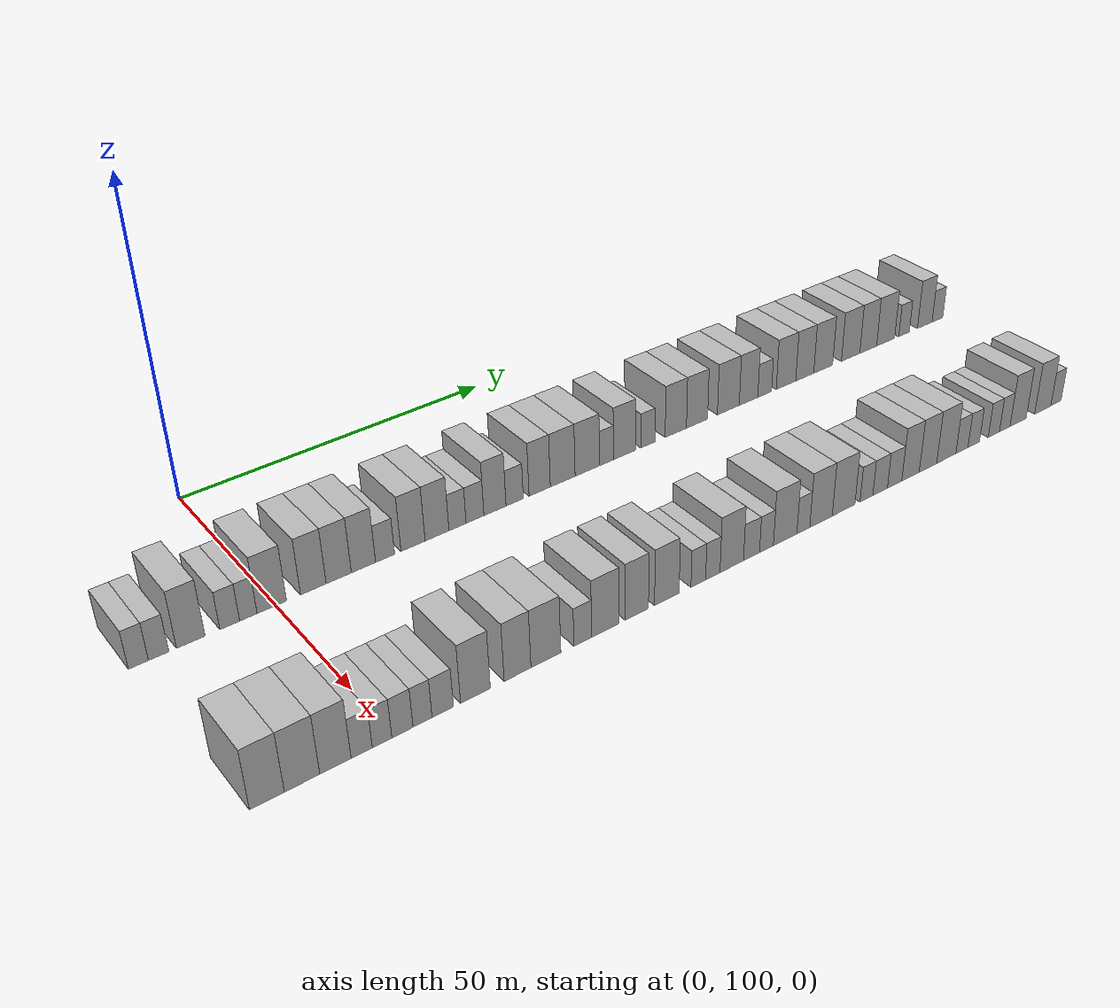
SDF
<sdf version="1.6">
 <world name="default">
  <model name="building_129">
   <static>1</static>
   <pose>25.0000 81.5462 0 0.000000 0.000000 0.000000</pose>
   <link name="link">
    <pose>0 0 3.00 0 0 0</pose>
    <collision name="collision"><geometry><box><size>10.0000 2.5734 6.0000</size></box></geometry></collision>
    <visual name="visual">
     <cast_shadows>0</cast_shadows>
     <geometry><box><size>10.0000 2.5734 6.0000</size></box></geometry>
     <material>
      <script>
       <uri>model://HANNAS_wall/materials/scripts</uri>
       <uri>model://HANNAS_wall/materials/textures</uri>
       <name>vrc/HANNAS_wall</name>
      </script>
     </material>
    </visual>
   </link>
  </model>
  <model name="building_130">
   <static>1</static>
   <pose>25.0000 84.1555 0 0.000000 0.000000 0.000000</pose>
   <link name="link">
    <pose>0 0 3.00 0 0 0</pose>
    <collision name="collision"><geometry><box><size>10.0000 2.6452 6.0000</size></box></geometry></collision>
    <visual name="visual">
     <cast_shadows>0</cast_shadows>
     <geometry><box><size>10.0000 2.6452 6.0000</size></box></geometry>
     <material>
      <script>
       <uri>model://HANNAS_wall/materials/scripts</uri>
       <uri>model://HANNAS_wall/materials/textures</uri>
       <name>vrc/HANNAS_wall</name>
      </script>
     </material>
    </visual>
   </link>
  </model>
  <model name="building_131">
   <static>1</static>
   <pose>25.0000 88.3767 0 0.000000 0.000000 0.000000</pose>
   <link name="link">
    <pose>0 0 4.50 0 0 0</pose>
    <collision name="collision"><geometry><box><size>10.0000 3.7973 9.0000</size></box></geometry></collision>
    <visual name="visual">
     <cast_shadows>0</cast_shadows>
     <geometry><box><size>10.0000 3.7973 9.0000</size></box></geometry>
     <material>
      <script>
       <uri>model://HANNAS_wall/materials/scripts</uri>
       <uri>model://HANNAS_wall/materials/textures</uri>
       <name>vrc/HANNAS_wall</name>
      </script>
     </material>
    </visual>
   </link>
  </model>
  <model name="building_132">
   <static>1</static>
   <pose>25.0000 93.6257 0 0.000000 0.000000 0.000000</pose>
   <link name="link">
    <pose>0 0 3.00 0 0 0</pose>
    <collision name="collision"><geometry><box><size>10.0000 2.7006 6.0000</size></box></geometry></collision>
    <visual name="visual">
     <cast_shadows>0</cast_shadows>
     <geometry><box><size>10.0000 2.7006 6.0000</size></box></geometry>
     <material>
      <script>
       <uri>model://HANNAS_wall/materials/scripts</uri>
       <uri>model://HANNAS_wall/materials/textures</uri>
       <name>vrc/HANNAS_wall</name>
      </script>
     </material>
    </visual>
   </link>
  </model>
  <model name="building_133">
   <static>1</static>
   <pose>25.0000 96.1832 0 0.000000 0.000000 0.000000</pose>
   <link name="link">
    <pose>0 0 3.00 0 0 0</pose>
    <collision name="collision"><geometry><box><size>10.0000 2.4144 6.0000</size></box></geometry></collision>
    <visual name="visual">
     <cast_shadows>0</cast_shadows>
     <geometry><box><size>10.0000 2.4144 6.0000</size></box></geometry>
     <material>
      <script>
       <uri>model://HANNAS_wall/materials/scripts</uri>
       <uri>model://HANNAS_wall/materials/textures</uri>
       <name>vrc/HANNAS_wall</name>
      </script>
     </material>
    </visual>
   </link>
  </model>
  <model name="building_134">
   <static>1</static>
   <pose>25.0000 99.4696 0 0.000000 0.000000 0.000000</pose>
   <link name="link">
    <pose>0 0 4.50 0 0 0</pose>
    <collision name="collision"><geometry><box><size>10.0000 4.1584 9.0000</size></box></geometry></collision>
    <visual name="visual">
     <cast_shadows>0</cast_shadows>
     <geometry><box><size>10.0000 4.1584 9.0000</size></box></geometry>
     <material>
      <script>
       <uri>model://HANNAS_wall/materials/scripts</uri>
       <uri>model://HANNAS_wall/materials/textures</uri>
       <name>vrc/HANNAS_wall</name>
      </script>
     </material>
    </visual>
   </link>
  </model>
  <model name="building_135">
   <static>1</static>
   <pose>25.0000 105.4151 0 0.000000 0.000000 0.000000</pose>
   <link name="link">
    <pose>0 0 4.50 0 0 0</pose>
    <collision name="collision"><geometry><box><size>10.0000 3.7325 9.0000</size></box></geometry></collision>
    <visual name="visual">
     <cast_shadows>0</cast_shadows>
     <geometry><box><size>10.0000 3.7325 9.0000</size></box></geometry>
     <material>
      <script>
       <uri>model://HANNAS_wall/materials/scripts</uri>
       <uri>model://HANNAS_wall/materials/textures</uri>
       <name>vrc/HANNAS_wall</name>
      </script>
     </material>
    </visual>
   </link>
  </model>
  <model name="building_136">
   <static>1</static>
   <pose>25.0000 109.1566 0 0.000000 0.000000 0.000000</pose>
   <link name="link">
    <pose>0 0 4.50 0 0 0</pose>
    <collision name="collision"><geometry><box><size>10.0000 3.7506 9.0000</size></box></geometry></collision>
    <visual name="visual">
     <cast_shadows>0</cast_shadows>
     <geometry><box><size>10.0000 3.7506 9.0000</size></box></geometry>
     <material>
      <script>
       <uri>model://HANNAS_wall/materials/scripts</uri>
       <uri>model://HANNAS_wall/materials/textures</uri>
       <name>vrc/HANNAS_wall</name>
      </script>
     </material>
    </visual>
   </link>
  </model>
  <model name="building_137">
   <static>1</static>
   <pose>25.0000 112.8638 0 0.000000 0.000000 0.000000</pose>
   <link name="link">
    <pose>0 0 4.50 0 0 0</pose>
    <collision name="collision"><geometry><box><size>10.0000 3.6638 9.0000</size></box></geometry></collision>
    <visual name="visual">
     <cast_shadows>0</cast_shadows>
     <geometry><box><size>10.0000 3.6638 9.0000</size></box></geometry>
     <material>
      <script>
       <uri>model://HANNAS_wall/materials/scripts</uri>
       <uri>model://HANNAS_wall/materials/textures</uri>
       <name>vrc/HANNAS_wall</name>
      </script>
     </material>
    </visual>
   </link>
  </model>
  <model name="building_138">
   <static>1</static>
   <pose>25.0000 116.1544 0 0.000000 0.000000 0.000000</pose>
   <link name="link">
    <pose>0 0 3.00 0 0 0</pose>
    <collision name="collision"><geometry><box><size>10.0000 2.9174 6.0000</size></box></geometry></collision>
    <visual name="visual">
     <cast_shadows>0</cast_shadows>
     <geometry><box><size>10.0000 2.9174 6.0000</size></box></geometry>
     <material>
      <script>
       <uri>model://HANNAS_wall/materials/scripts</uri>
       <uri>model://HANNAS_wall/materials/textures</uri>
       <name>vrc/HANNAS_wall</name>
      </script>
     </material>
    </visual>
   </link>
  </model>
  <model name="building_139">
   <static>1</static>
   <pose>25.0000 120.5083 0 0.000000 0.000000 0.000000</pose>
   <link name="link">
    <pose>0 0 4.50 0 0 0</pose>
    <collision name="collision"><geometry><box><size>10.0000 3.7902 9.0000</size></box></geometry></collision>
    <visual name="visual">
     <cast_shadows>0</cast_shadows>
     <geometry><box><size>10.0000 3.7902 9.0000</size></box></geometry>
     <material>
      <script>
       <uri>model://HANNAS_wall/materials/scripts</uri>
       <uri>model://HANNAS_wall/materials/textures</uri>
       <name>vrc/HANNAS_wall</name>
      </script>
     </material>
    </visual>
   </link>
  </model>
  <model name="building_140">
   <static>1</static>
   <pose>25.0000 124.3193 0 0.000000 0.000000 0.000000</pose>
   <link name="link">
    <pose>0 0 4.50 0 0 0</pose>
    <collision name="collision"><geometry><box><size>10.0000 3.8318 9.0000</size></box></geometry></collision>
    <visual name="visual">
     <cast_shadows>0</cast_shadows>
     <geometry><box><size>10.0000 3.8318 9.0000</size></box></geometry>
     <material>
      <script>
       <uri>model://HANNAS_wall/materials/scripts</uri>
       <uri>model://HANNAS_wall/materials/textures</uri>
       <name>vrc/HANNAS_wall</name>
      </script>
     </material>
    </visual>
   </link>
  </model>
  <model name="building_141">
   <static>1</static>
   <pose>25.0000 127.6277 0 0.000000 0.000000 0.000000</pose>
   <link name="link">
    <pose>0 0 3.00 0 0 0</pose>
    <collision name="collision"><geometry><box><size>10.0000 2.7850 6.0000</size></box></geometry></collision>
    <visual name="visual">
     <cast_shadows>0</cast_shadows>
     <geometry><box><size>10.0000 2.7850 6.0000</size></box></geometry>
     <material>
      <script>
       <uri>model://HANNAS_wall/materials/scripts</uri>
       <uri>model://HANNAS_wall/materials/textures</uri>
       <name>vrc/HANNAS_wall</name>
      </script>
     </material>
    </visual>
   </link>
  </model>
  <model name="building_142">
   <static>1</static>
   <pose>25.0000 130.4975 0 0.000000 0.000000 0.000000</pose>
   <link name="link">
    <pose>0 0 3.00 0 0 0</pose>
    <collision name="collision"><geometry><box><size>10.0000 2.9546 6.0000</size></box></geometry></collision>
    <visual name="visual">
     <cast_shadows>0</cast_shadows>
     <geometry><box><size>10.0000 2.9546 6.0000</size></box></geometry>
     <material>
      <script>
       <uri>model://HANNAS_wall/materials/scripts</uri>
       <uri>model://HANNAS_wall/materials/textures</uri>
       <name>vrc/HANNAS_wall</name>
      </script>
     </material>
    </visual>
   </link>
  </model>
  <model name="building_143">
   <static>1</static>
   <pose>25.0000 133.8293 0 0.000000 0.000000 0.000000</pose>
   <link name="link">
    <pose>0 0 4.50 0 0 0</pose>
    <collision name="collision"><geometry><box><size>10.0000 3.7090 9.0000</size></box></geometry></collision>
    <visual name="visual">
     <cast_shadows>0</cast_shadows>
     <geometry><box><size>10.0000 3.7090 9.0000</size></box></geometry>
     <material>
      <script>
       <uri>model://HANNAS_wall/materials/scripts</uri>
       <uri>model://HANNAS_wall/materials/textures</uri>
       <name>vrc/HANNAS_wall</name>
      </script>
     </material>
    </visual>
   </link>
  </model>
  <model name="building_144">
   <static>1</static>
   <pose>25.0000 137.1598 0 0.000000 0.000000 0.000000</pose>
   <link name="link">
    <pose>0 0 3.00 0 0 0</pose>
    <collision name="collision"><geometry><box><size>10.0000 2.9521 6.0000</size></box></geometry></collision>
    <visual name="visual">
     <cast_shadows>0</cast_shadows>
     <geometry><box><size>10.0000 2.9521 6.0000</size></box></geometry>
     <material>
      <script>
       <uri>model://HANNAS_wall/materials/scripts</uri>
       <uri>model://HANNAS_wall/materials/textures</uri>
       <name>vrc/HANNAS_wall</name>
      </script>
     </material>
    </visual>
   </link>
  </model>
  <model name="building_145">
   <static>1</static>
   <pose>25.0000 141.4892 0 0.000000 0.000000 0.000000</pose>
   <link name="link">
    <pose>0 0 4.50 0 0 0</pose>
    <collision name="collision"><geometry><box><size>10.0000 3.7066 9.0000</size></box></geometry></collision>
    <visual name="visual">
     <cast_shadows>0</cast_shadows>
     <geometry><box><size>10.0000 3.7066 9.0000</size></box></geometry>
     <material>
      <script>
       <uri>model://HANNAS_wall/materials/scripts</uri>
       <uri>model://HANNAS_wall/materials/textures</uri>
       <name>vrc/HANNAS_wall</name>
      </script>
     </material>
    </visual>
   </link>
  </model>
  <model name="building_146">
   <static>1</static>
   <pose>25.0000 145.5466 0 0.000000 0.000000 0.000000</pose>
   <link name="link">
    <pose>0 0 4.50 0 0 0</pose>
    <collision name="collision"><geometry><box><size>10.0000 4.4081 9.0000</size></box></geometry></collision>
    <visual name="visual">
     <cast_shadows>0</cast_shadows>
     <geometry><box><size>10.0000 4.4081 9.0000</size></box></geometry>
     <material>
      <script>
       <uri>model://HANNAS_wall/materials/scripts</uri>
       <uri>model://HANNAS_wall/materials/textures</uri>
       <name>vrc/HANNAS_wall</name>
      </script>
     </material>
    </visual>
   </link>
  </model>
  <model name="building_147">
   <static>1</static>
   <pose>25.0000 149.9757 0 0.000000 0.000000 0.000000</pose>
   <link name="link">
    <pose>0 0 4.50 0 0 0</pose>
    <collision name="collision"><geometry><box><size>10.0000 4.4503 9.0000</size></box></geometry></collision>
    <visual name="visual">
     <cast_shadows>0</cast_shadows>
     <geometry><box><size>10.0000 4.4503 9.0000</size></box></geometry>
     <material>
      <script>
       <uri>model://HANNAS_wall/materials/scripts</uri>
       <uri>model://HANNAS_wall/materials/textures</uri>
       <name>vrc/HANNAS_wall</name>
      </script>
     </material>
    </visual>
   </link>
  </model>
  <model name="building_148">
   <static>1</static>
   <pose>25.0000 153.4840 0 0.000000 0.000000 0.000000</pose>
   <link name="link">
    <pose>0 0 3.00 0 0 0</pose>
    <collision name="collision"><geometry><box><size>10.0000 2.5662 6.0000</size></box></geometry></collision>
    <visual name="visual">
     <cast_shadows>0</cast_shadows>
     <geometry><box><size>10.0000 2.5662 6.0000</size></box></geometry>
     <material>
      <script>
       <uri>model://HANNAS_wall/materials/scripts</uri>
       <uri>model://HANNAS_wall/materials/textures</uri>
       <name>vrc/HANNAS_wall</name>
      </script>
     </material>
    </visual>
   </link>
  </model>
  <model name="building_149">
   <static>1</static>
   <pose>25.0000 156.8403 0 0.000000 0.000000 0.000000</pose>
   <link name="link">
    <pose>0 0 4.50 0 0 0</pose>
    <collision name="collision"><geometry><box><size>10.0000 4.1465 9.0000</size></box></geometry></collision>
    <visual name="visual">
     <cast_shadows>0</cast_shadows>
     <geometry><box><size>10.0000 4.1465 9.0000</size></box></geometry>
     <material>
      <script>
       <uri>model://HANNAS_wall/materials/scripts</uri>
       <uri>model://HANNAS_wall/materials/textures</uri>
       <name>vrc/HANNAS_wall</name>
      </script>
     </material>
    </visual>
   </link>
  </model>
  <model name="building_150">
   <static>1</static>
   <pose>25.0000 161.2482 0 0.000000 0.000000 0.000000</pose>
   <link name="link">
    <pose>0 0 3.00 0 0 0</pose>
    <collision name="collision"><geometry><box><size>10.0000 2.6692 6.0000</size></box></geometry></collision>
    <visual name="visual">
     <cast_shadows>0</cast_shadows>
     <geometry><box><size>10.0000 2.6692 6.0000</size></box></geometry>
     <material>
      <script>
       <uri>model://HANNAS_wall/materials/scripts</uri>
       <uri>model://HANNAS_wall/materials/textures</uri>
       <name>vrc/HANNAS_wall</name>
      </script>
     </material>
    </visual>
   </link>
  </model>
  <model name="building_151">
   <static>1</static>
   <pose>25.0000 166.6729 0 0.000000 0.000000 0.000000</pose>
   <link name="link">
    <pose>0 0 4.50 0 0 0</pose>
    <collision name="collision"><geometry><box><size>10.0000 4.1803 9.0000</size></box></geometry></collision>
    <visual name="visual">
     <cast_shadows>0</cast_shadows>
     <geometry><box><size>10.0000 4.1803 9.0000</size></box></geometry>
     <material>
      <script>
       <uri>model://HANNAS_wall/materials/scripts</uri>
       <uri>model://HANNAS_wall/materials/textures</uri>
       <name>vrc/HANNAS_wall</name>
      </script>
     </material>
    </visual>
   </link>
  </model>
  <model name="building_152">
   <static>1</static>
   <pose>25.0000 170.8709 0 0.000000 0.000000 0.000000</pose>
   <link name="link">
    <pose>0 0 4.50 0 0 0</pose>
    <collision name="collision"><geometry><box><size>10.0000 4.2157 9.0000</size></box></geometry></collision>
    <visual name="visual">
     <cast_shadows>0</cast_shadows>
     <geometry><box><size>10.0000 4.2157 9.0000</size></box></geometry>
     <material>
      <script>
       <uri>model://HANNAS_wall/materials/scripts</uri>
       <uri>model://HANNAS_wall/materials/textures</uri>
       <name>vrc/HANNAS_wall</name>
      </script>
     </material>
    </visual>
   </link>
  </model>
  <model name="building_153">
   <static>1</static>
   <pose>25.0000 177.2249 0 0.000000 0.000000 0.000000</pose>
   <link name="link">
    <pose>0 0 4.50 0 0 0</pose>
    <collision name="collision"><geometry><box><size>10.0000 4.4922 9.0000</size></box></geometry></collision>
    <visual name="visual">
     <cast_shadows>0</cast_shadows>
     <geometry><box><size>10.0000 4.4922 9.0000</size></box></geometry>
     <material>
      <script>
       <uri>model://HANNAS_wall/materials/scripts</uri>
       <uri>model://HANNAS_wall/materials/textures</uri>
       <name>vrc/HANNAS_wall</name>
      </script>
     </material>
    </visual>
   </link>
  </model>
  <model name="building_154">
   <static>1</static>
   <pose>25.0000 181.4167 0 0.000000 0.000000 0.000000</pose>
   <link name="link">
    <pose>0 0 4.50 0 0 0</pose>
    <collision name="collision"><geometry><box><size>10.0000 3.8913 9.0000</size></box></geometry></collision>
    <visual name="visual">
     <cast_shadows>0</cast_shadows>
     <geometry><box><size>10.0000 3.8913 9.0000</size></box></geometry>
     <material>
      <script>
       <uri>model://HANNAS_wall/materials/scripts</uri>
       <uri>model://HANNAS_wall/materials/textures</uri>
       <name>vrc/HANNAS_wall</name>
      </script>
     </material>
    </visual>
   </link>
  </model>
  <model name="building_155">
   <static>1</static>
   <pose>25.0000 184.8245 0 0.000000 0.000000 0.000000</pose>
   <link name="link">
    <pose>0 0 3.00 0 0 0</pose>
    <collision name="collision"><geometry><box><size>10.0000 2.9243 6.0000</size></box></geometry></collision>
    <visual name="visual">
     <cast_shadows>0</cast_shadows>
     <geometry><box><size>10.0000 2.9243 6.0000</size></box></geometry>
     <material>
      <script>
       <uri>model://HANNAS_wall/materials/scripts</uri>
       <uri>model://HANNAS_wall/materials/textures</uri>
       <name>vrc/HANNAS_wall</name>
      </script>
     </material>
    </visual>
   </link>
  </model>
  <model name="building_156">
   <static>1</static>
   <pose>25.0000 189.4031 0 0.000000 0.000000 0.000000</pose>
   <link name="link">
    <pose>0 0 4.50 0 0 0</pose>
    <collision name="collision"><geometry><box><size>10.0000 4.2331 9.0000</size></box></geometry></collision>
    <visual name="visual">
     <cast_shadows>0</cast_shadows>
     <geometry><box><size>10.0000 4.2331 9.0000</size></box></geometry>
     <material>
      <script>
       <uri>model://HANNAS_wall/materials/scripts</uri>
       <uri>model://HANNAS_wall/materials/textures</uri>
       <name>vrc/HANNAS_wall</name>
      </script>
     </material>
    </visual>
   </link>
  </model>
  <model name="building_157">
   <static>1</static>
   <pose>25.0000 193.5155 0 0.000000 0.000000 0.000000</pose>
   <link name="link">
    <pose>0 0 4.50 0 0 0</pose>
    <collision name="collision"><geometry><box><size>10.0000 3.9917 9.0000</size></box></geometry></collision>
    <visual name="visual">
     <cast_shadows>0</cast_shadows>
     <geometry><box><size>10.0000 3.9917 9.0000</size></box></geometry>
     <material>
      <script>
       <uri>model://HANNAS_wall/materials/scripts</uri>
       <uri>model://HANNAS_wall/materials/textures</uri>
       <name>vrc/HANNAS_wall</name>
      </script>
     </material>
    </visual>
   </link>
  </model>
  <model name="building_158">
   <static>1</static>
   <pose>25.0000 197.6325 0 0.000000 0.000000 0.000000</pose>
   <link name="link">
    <pose>0 0 4.50 0 0 0</pose>
    <collision name="collision"><geometry><box><size>10.0000 4.2423 9.0000</size></box></geometry></collision>
    <visual name="visual">
     <cast_shadows>0</cast_shadows>
     <geometry><box><size>10.0000 4.2423 9.0000</size></box></geometry>
     <material>
      <script>
       <uri>model://HANNAS_wall/materials/scripts</uri>
       <uri>model://HANNAS_wall/materials/textures</uri>
       <name>vrc/HANNAS_wall</name>
      </script>
     </material>
    </visual>
   </link>
  </model>
  <model name="building_159">
   <static>1</static>
   <pose>25.0000 203.8758 0 0.000000 0.000000 0.000000</pose>
   <link name="link">
    <pose>0 0 4.50 0 0 0</pose>
    <collision name="collision"><geometry><box><size>10.0000 4.2443 9.0000</size></box></geometry></collision>
    <visual name="visual">
     <cast_shadows>0</cast_shadows>
     <geometry><box><size>10.0000 4.2443 9.0000</size></box></geometry>
     <material>
      <script>
       <uri>model://HANNAS_wall/materials/scripts</uri>
       <uri>model://HANNAS_wall/materials/textures</uri>
       <name>vrc/HANNAS_wall</name>
      </script>
     </material>
    </visual>
   </link>
  </model>
  <model name="building_160">
   <static>1</static>
   <pose>25.0000 207.9677 0 0.000000 0.000000 0.000000</pose>
   <link name="link">
    <pose>0 0 4.50 0 0 0</pose>
    <collision name="collision"><geometry><box><size>10.0000 3.9394 9.0000</size></box></geometry></collision>
    <visual name="visual">
     <cast_shadows>0</cast_shadows>
     <geometry><box><size>10.0000 3.9394 9.0000</size></box></geometry>
     <material>
      <script>
       <uri>model://HANNAS_wall/materials/scripts</uri>
       <uri>model://HANNAS_wall/materials/textures</uri>
       <name>vrc/HANNAS_wall</name>
      </script>
     </material>
    </visual>
   </link>
  </model>
  <model name="building_161">
   <static>1</static>
   <pose>25.0000 212.0840 0 0.000000 0.000000 0.000000</pose>
   <link name="link">
    <pose>0 0 4.50 0 0 0</pose>
    <collision name="collision"><geometry><box><size>10.0000 4.2931 9.0000</size></box></geometry></collision>
    <visual name="visual">
     <cast_shadows>0</cast_shadows>
     <geometry><box><size>10.0000 4.2931 9.0000</size></box></geometry>
     <material>
      <script>
       <uri>model://HANNAS_wall/materials/scripts</uri>
       <uri>model://HANNAS_wall/materials/textures</uri>
       <name>vrc/HANNAS_wall</name>
      </script>
     </material>
    </visual>
   </link>
  </model>
  <model name="building_162">
   <static>1</static>
   <pose>25.0000 216.5150 0 0.000000 0.000000 0.000000</pose>
   <link name="link">
    <pose>0 0 3.00 0 0 0</pose>
    <collision name="collision"><geometry><box><size>10.0000 2.5689 6.0000</size></box></geometry></collision>
    <visual name="visual">
     <cast_shadows>0</cast_shadows>
     <geometry><box><size>10.0000 2.5689 6.0000</size></box></geometry>
     <material>
      <script>
       <uri>model://HANNAS_wall/materials/scripts</uri>
       <uri>model://HANNAS_wall/materials/textures</uri>
       <name>vrc/HANNAS_wall</name>
      </script>
     </material>
    </visual>
   </link>
  </model>
  <model name="building_163">
   <static>1</static>
   <pose>25.0000 221.6110 0 0.000000 0.000000 0.000000</pose>
   <link name="link">
    <pose>0 0 4.50 0 0 0</pose>
    <collision name="collision"><geometry><box><size>10.0000 3.6230 9.0000</size></box></geometry></collision>
    <visual name="visual">
     <cast_shadows>0</cast_shadows>
     <geometry><box><size>10.0000 3.6230 9.0000</size></box></geometry>
     <material>
      <script>
       <uri>model://HANNAS_wall/materials/scripts</uri>
       <uri>model://HANNAS_wall/materials/textures</uri>
       <name>vrc/HANNAS_wall</name>
      </script>
     </material>
    </visual>
   </link>
  </model>
  <model name="building_164">
   <static>1</static>
   <pose>25.0000 224.7690 0 0.000000 0.000000 0.000000</pose>
   <link name="link">
    <pose>0 0 3.00 0 0 0</pose>
    <collision name="collision"><geometry><box><size>10.0000 2.6929 6.0000</size></box></geometry></collision>
    <visual name="visual">
     <cast_shadows>0</cast_shadows>
     <geometry><box><size>10.0000 2.6929 6.0000</size></box></geometry>
     <material>
      <script>
       <uri>model://HANNAS_wall/materials/scripts</uri>
       <uri>model://HANNAS_wall/materials/textures</uri>
       <name>vrc/HANNAS_wall</name>
      </script>
     </material>
    </visual>
   </link>
  </model>
  <model name="building_363">
   <static>1</static>
   <pose>55.0000 83.9334 0 0.000000 0.000000 0.000000</pose>
   <link name="link">
    <pose>0 0 4.50 0 0 0</pose>
    <collision name="collision"><geometry><box><size>10.0000 4.2176 9.0000</size></box></geometry></collision>
    <visual name="visual">
     <cast_shadows>0</cast_shadows>
     <geometry><box><size>10.0000 4.2176 9.0000</size></box></geometry>
     <material>
      <script>
       <uri>model://HANNAS_wall/materials/scripts</uri>
       <uri>model://HANNAS_wall/materials/textures</uri>
       <name>vrc/HANNAS_wall</name>
      </script>
     </material>
    </visual>
   </link>
  </model>
  <model name="building_364">
   <static>1</static>
   <pose>55.0000 88.2327 0 0.000000 0.000000 0.000000</pose>
   <link name="link">
    <pose>0 0 4.50 0 0 0</pose>
    <collision name="collision"><geometry><box><size>10.0000 4.3810 9.0000</size></box></geometry></collision>
    <visual name="visual">
     <cast_shadows>0</cast_shadows>
     <geometry><box><size>10.0000 4.3810 9.0000</size></box></geometry>
     <material>
      <script>
       <uri>model://HANNAS_wall/materials/scripts</uri>
       <uri>model://HANNAS_wall/materials/textures</uri>
       <name>vrc/HANNAS_wall</name>
      </script>
     </material>
    </visual>
   </link>
  </model>
  <model name="building_365">
   <static>1</static>
   <pose>55.0000 92.4131 0 0.000000 0.000000 0.000000</pose>
   <link name="link">
    <pose>0 0 4.50 0 0 0</pose>
    <collision name="collision"><geometry><box><size>10.0000 3.9799 9.0000</size></box></geometry></collision>
    <visual name="visual">
     <cast_shadows>0</cast_shadows>
     <geometry><box><size>10.0000 3.9799 9.0000</size></box></geometry>
     <material>
      <script>
       <uri>model://HANNAS_wall/materials/scripts</uri>
       <uri>model://HANNAS_wall/materials/textures</uri>
       <name>vrc/HANNAS_wall</name>
      </script>
     </material>
    </visual>
   </link>
  </model>
  <model name="building_366">
   <static>1</static>
   <pose>55.0000 95.7740 0 0.000000 0.000000 0.000000</pose>
   <link name="link">
    <pose>0 0 3.00 0 0 0</pose>
    <collision name="collision"><geometry><box><size>10.0000 2.7418 6.0000</size></box></geometry></collision>
    <visual name="visual">
     <cast_shadows>0</cast_shadows>
     <geometry><box><size>10.0000 2.7418 6.0000</size></box></geometry>
     <material>
      <script>
       <uri>model://HANNAS_wall/materials/scripts</uri>
       <uri>model://HANNAS_wall/materials/textures</uri>
       <name>vrc/HANNAS_wall</name>
      </script>
     </material>
    </visual>
   </link>
  </model>
  <model name="building_367">
   <static>1</static>
   <pose>55.0000 98.4320 0 0.000000 0.000000 0.000000</pose>
   <link name="link">
    <pose>0 0 3.00 0 0 0</pose>
    <collision name="collision"><geometry><box><size>10.0000 2.5742 6.0000</size></box></geometry></collision>
    <visual name="visual">
     <cast_shadows>0</cast_shadows>
     <geometry><box><size>10.0000 2.5742 6.0000</size></box></geometry>
     <material>
      <script>
       <uri>model://HANNAS_wall/materials/scripts</uri>
       <uri>model://HANNAS_wall/materials/textures</uri>
       <name>vrc/HANNAS_wall</name>
      </script>
     </material>
    </visual>
   </link>
  </model>
  <model name="building_368">
   <static>1</static>
   <pose>55.0000 101.1328 0 0.000000 0.000000 0.000000</pose>
   <link name="link">
    <pose>0 0 3.00 0 0 0</pose>
    <collision name="collision"><geometry><box><size>10.0000 2.8274 6.0000</size></box></geometry></collision>
    <visual name="visual">
     <cast_shadows>0</cast_shadows>
     <geometry><box><size>10.0000 2.8274 6.0000</size></box></geometry>
     <material>
      <script>
       <uri>model://HANNAS_wall/materials/scripts</uri>
       <uri>model://HANNAS_wall/materials/textures</uri>
       <name>vrc/HANNAS_wall</name>
      </script>
     </material>
    </visual>
   </link>
  </model>
  <model name="building_369">
   <static>1</static>
   <pose>55.0000 103.8367 0 0.000000 0.000000 0.000000</pose>
   <link name="link">
    <pose>0 0 3.00 0 0 0</pose>
    <collision name="collision"><geometry><box><size>10.0000 2.5804 6.0000</size></box></geometry></collision>
    <visual name="visual">
     <cast_shadows>0</cast_shadows>
     <geometry><box><size>10.0000 2.5804 6.0000</size></box></geometry>
     <material>
      <script>
       <uri>model://HANNAS_wall/materials/scripts</uri>
       <uri>model://HANNAS_wall/materials/textures</uri>
       <name>vrc/HANNAS_wall</name>
      </script>
     </material>
    </visual>
   </link>
  </model>
  <model name="building_370">
   <static>1</static>
   <pose>55.0000 106.6008 0 0.000000 0.000000 0.000000</pose>
   <link name="link">
    <pose>0 0 3.00 0 0 0</pose>
    <collision name="collision"><geometry><box><size>10.0000 2.9479 6.0000</size></box></geometry></collision>
    <visual name="visual">
     <cast_shadows>0</cast_shadows>
     <geometry><box><size>10.0000 2.9479 6.0000</size></box></geometry>
     <material>
      <script>
       <uri>model://HANNAS_wall/materials/scripts</uri>
       <uri>model://HANNAS_wall/materials/textures</uri>
       <name>vrc/HANNAS_wall</name>
      </script>
     </material>
    </visual>
   </link>
  </model>
  <model name="building_371">
   <static>1</static>
   <pose>55.0000 111.1814 0 0.000000 0.000000 0.000000</pose>
   <link name="link">
    <pose>0 0 4.50 0 0 0</pose>
    <collision name="collision"><geometry><box><size>10.0000 4.2133 9.0000</size></box></geometry></collision>
    <visual name="visual">
     <cast_shadows>0</cast_shadows>
     <geometry><box><size>10.0000 4.2133 9.0000</size></box></geometry>
     <material>
      <script>
       <uri>model://HANNAS_wall/materials/scripts</uri>
       <uri>model://HANNAS_wall/materials/textures</uri>
       <name>vrc/HANNAS_wall</name>
      </script>
     </material>
    </visual>
   </link>
  </model>
  <model name="building_372">
   <static>1</static>
   <pose>55.0000 117.2565 0 0.000000 0.000000 0.000000</pose>
   <link name="link">
    <pose>0 0 4.50 0 0 0</pose>
    <collision name="collision"><geometry><box><size>10.0000 3.9368 9.0000</size></box></geometry></collision>
    <visual name="visual">
     <cast_shadows>0</cast_shadows>
     <geometry><box><size>10.0000 3.9368 9.0000</size></box></geometry>
     <material>
      <script>
       <uri>model://HANNAS_wall/materials/scripts</uri>
       <uri>model://HANNAS_wall/materials/textures</uri>
       <name>vrc/HANNAS_wall</name>
      </script>
     </material>
    </visual>
   </link>
  </model>
  <model name="building_373">
   <static>1</static>
   <pose>55.0000 121.4720 0 0.000000 0.000000 0.000000</pose>
   <link name="link">
    <pose>0 0 4.50 0 0 0</pose>
    <collision name="collision"><geometry><box><size>10.0000 4.4942 9.0000</size></box></geometry></collision>
    <visual name="visual">
     <cast_shadows>0</cast_shadows>
     <geometry><box><size>10.0000 4.4942 9.0000</size></box></geometry>
     <material>
      <script>
       <uri>model://HANNAS_wall/materials/scripts</uri>
       <uri>model://HANNAS_wall/materials/textures</uri>
       <name>vrc/HANNAS_wall</name>
      </script>
     </material>
    </visual>
   </link>
  </model>
  <model name="building_374">
   <static>1</static>
   <pose>55.0000 127.0957 0 0.000000 0.000000 0.000000</pose>
   <link name="link">
    <pose>0 0 3.00 0 0 0</pose>
    <collision name="collision"><geometry><box><size>10.0000 2.7533 6.0000</size></box></geometry></collision>
    <visual name="visual">
     <cast_shadows>0</cast_shadows>
     <geometry><box><size>10.0000 2.7533 6.0000</size></box></geometry>
     <material>
      <script>
       <uri>model://HANNAS_wall/materials/scripts</uri>
       <uri>model://HANNAS_wall/materials/textures</uri>
       <name>vrc/HANNAS_wall</name>
      </script>
     </material>
    </visual>
   </link>
  </model>
  <model name="building_375">
   <static>1</static>
   <pose>55.0000 130.6360 0 0.000000 0.000000 0.000000</pose>
   <link name="link">
    <pose>0 0 4.50 0 0 0</pose>
    <collision name="collision"><geometry><box><size>10.0000 4.3273 9.0000</size></box></geometry></collision>
    <visual name="visual">
     <cast_shadows>0</cast_shadows>
     <geometry><box><size>10.0000 4.3273 9.0000</size></box></geometry>
     <material>
      <script>
       <uri>model://HANNAS_wall/materials/scripts</uri>
       <uri>model://HANNAS_wall/materials/textures</uri>
       <name>vrc/HANNAS_wall</name>
      </script>
     </material>
    </visual>
   </link>
  </model>
  <model name="building_376">
   <static>1</static>
   <pose>55.0000 135.6810 0 0.000000 0.000000 0.000000</pose>
   <link name="link">
    <pose>0 0 4.50 0 0 0</pose>
    <collision name="collision"><geometry><box><size>10.0000 3.7629 9.0000</size></box></geometry></collision>
    <visual name="visual">
     <cast_shadows>0</cast_shadows>
     <geometry><box><size>10.0000 3.7629 9.0000</size></box></geometry>
     <material>
      <script>
       <uri>model://HANNAS_wall/materials/scripts</uri>
       <uri>model://HANNAS_wall/materials/textures</uri>
       <name>vrc/HANNAS_wall</name>
      </script>
     </material>
    </visual>
   </link>
  </model>
  <model name="building_377">
   <static>1</static>
   <pose>55.0000 140.6112 0 0.000000 0.000000 0.000000</pose>
   <link name="link">
    <pose>0 0 4.50 0 0 0</pose>
    <collision name="collision"><geometry><box><size>10.0000 4.0975 9.0000</size></box></geometry></collision>
    <visual name="visual">
     <cast_shadows>0</cast_shadows>
     <geometry><box><size>10.0000 4.0975 9.0000</size></box></geometry>
     <material>
      <script>
       <uri>model://HANNAS_wall/materials/scripts</uri>
       <uri>model://HANNAS_wall/materials/textures</uri>
       <name>vrc/HANNAS_wall</name>
      </script>
     </material>
    </visual>
   </link>
  </model>
  <model name="building_378">
   <static>1</static>
   <pose>55.0000 145.9171 0 0.000000 0.000000 0.000000</pose>
   <link name="link">
    <pose>0 0 3.00 0 0 0</pose>
    <collision name="collision"><geometry><box><size>10.0000 2.5144 6.0000</size></box></geometry></collision>
    <visual name="visual">
     <cast_shadows>0</cast_shadows>
     <geometry><box><size>10.0000 2.5144 6.0000</size></box></geometry>
     <material>
      <script>
       <uri>model://HANNAS_wall/materials/scripts</uri>
       <uri>model://HANNAS_wall/materials/textures</uri>
       <name>vrc/HANNAS_wall</name>
      </script>
     </material>
    </visual>
   </link>
  </model>
  <model name="building_379">
   <static>1</static>
   <pose>55.0000 148.4231 0 0.000000 0.000000 0.000000</pose>
   <link name="link">
    <pose>0 0 3.00 0 0 0</pose>
    <collision name="collision"><geometry><box><size>10.0000 2.4976 6.0000</size></box></geometry></collision>
    <visual name="visual">
     <cast_shadows>0</cast_shadows>
     <geometry><box><size>10.0000 2.4976 6.0000</size></box></geometry>
     <material>
      <script>
       <uri>model://HANNAS_wall/materials/scripts</uri>
       <uri>model://HANNAS_wall/materials/textures</uri>
       <name>vrc/HANNAS_wall</name>
      </script>
     </material>
    </visual>
   </link>
  </model>
  <model name="building_380">
   <static>1</static>
   <pose>55.0000 151.7488 0 0.000000 0.000000 0.000000</pose>
   <link name="link">
    <pose>0 0 4.50 0 0 0</pose>
    <collision name="collision"><geometry><box><size>10.0000 4.1538 9.0000</size></box></geometry></collision>
    <visual name="visual">
     <cast_shadows>0</cast_shadows>
     <geometry><box><size>10.0000 4.1538 9.0000</size></box></geometry>
     <material>
      <script>
       <uri>model://HANNAS_wall/materials/scripts</uri>
       <uri>model://HANNAS_wall/materials/textures</uri>
       <name>vrc/HANNAS_wall</name>
      </script>
     </material>
    </visual>
   </link>
  </model>
  <model name="building_381">
   <static>1</static>
   <pose>55.0000 155.2684 0 0.000000 0.000000 0.000000</pose>
   <link name="link">
    <pose>0 0 3.00 0 0 0</pose>
    <collision name="collision"><geometry><box><size>10.0000 2.8855 6.0000</size></box></geometry></collision>
    <visual name="visual">
     <cast_shadows>0</cast_shadows>
     <geometry><box><size>10.0000 2.8855 6.0000</size></box></geometry>
     <material>
      <script>
       <uri>model://HANNAS_wall/materials/scripts</uri>
       <uri>model://HANNAS_wall/materials/textures</uri>
       <name>vrc/HANNAS_wall</name>
      </script>
     </material>
    </visual>
   </link>
  </model>
  <model name="building_382">
   <static>1</static>
   <pose>55.0000 157.9794 0 0.000000 0.000000 0.000000</pose>
   <link name="link">
    <pose>0 0 3.00 0 0 0</pose>
    <collision name="collision"><geometry><box><size>10.0000 2.5365 6.0000</size></box></geometry></collision>
    <visual name="visual">
     <cast_shadows>0</cast_shadows>
     <geometry><box><size>10.0000 2.5365 6.0000</size></box></geometry>
     <material>
      <script>
       <uri>model://HANNAS_wall/materials/scripts</uri>
       <uri>model://HANNAS_wall/materials/textures</uri>
       <name>vrc/HANNAS_wall</name>
      </script>
     </material>
    </visual>
   </link>
  </model>
  <model name="building_383">
   <static>1</static>
   <pose>55.0000 161.4308 0 0.000000 0.000000 0.000000</pose>
   <link name="link">
    <pose>0 0 4.50 0 0 0</pose>
    <collision name="collision"><geometry><box><size>10.0000 4.3664 9.0000</size></box></geometry></collision>
    <visual name="visual">
     <cast_shadows>0</cast_shadows>
     <geometry><box><size>10.0000 4.3664 9.0000</size></box></geometry>
     <material>
      <script>
       <uri>model://HANNAS_wall/materials/scripts</uri>
       <uri>model://HANNAS_wall/materials/textures</uri>
       <name>vrc/HANNAS_wall</name>
      </script>
     </material>
    </visual>
   </link>
  </model>
  <model name="building_384">
   <static>1</static>
   <pose>55.0000 164.8357 0 0.000000 0.000000 0.000000</pose>
   <link name="link">
    <pose>0 0 3.00 0 0 0</pose>
    <collision name="collision"><geometry><box><size>10.0000 2.4433 6.0000</size></box></geometry></collision>
    <visual name="visual">
     <cast_shadows>0</cast_shadows>
     <geometry><box><size>10.0000 2.4433 6.0000</size></box></geometry>
     <material>
      <script>
       <uri>model://HANNAS_wall/materials/scripts</uri>
       <uri>model://HANNAS_wall/materials/textures</uri>
       <name>vrc/HANNAS_wall</name>
      </script>
     </material>
    </visual>
   </link>
  </model>
  <model name="building_385">
   <static>1</static>
   <pose>55.0000 168.2212 0 0.000000 0.000000 0.000000</pose>
   <link name="link">
    <pose>0 0 4.50 0 0 0</pose>
    <collision name="collision"><geometry><box><size>10.0000 4.3278 9.0000</size></box></geometry></collision>
    <visual name="visual">
     <cast_shadows>0</cast_shadows>
     <geometry><box><size>10.0000 4.3278 9.0000</size></box></geometry>
     <material>
      <script>
       <uri>model://HANNAS_wall/materials/scripts</uri>
       <uri>model://HANNAS_wall/materials/textures</uri>
       <name>vrc/HANNAS_wall</name>
      </script>
     </material>
    </visual>
   </link>
  </model>
  <model name="building_386">
   <static>1</static>
   <pose>55.0000 172.6110 0 0.000000 0.000000 0.000000</pose>
   <link name="link">
    <pose>0 0 4.50 0 0 0</pose>
    <collision name="collision"><geometry><box><size>10.0000 4.4517 9.0000</size></box></geometry></collision>
    <visual name="visual">
     <cast_shadows>0</cast_shadows>
     <geometry><box><size>10.0000 4.4517 9.0000</size></box></geometry>
     <material>
      <script>
       <uri>model://HANNAS_wall/materials/scripts</uri>
       <uri>model://HANNAS_wall/materials/textures</uri>
       <name>vrc/HANNAS_wall</name>
      </script>
     </material>
    </visual>
   </link>
  </model>
  <model name="building_387">
   <static>1</static>
   <pose>55.0000 177.1245 0 0.000000 0.000000 0.000000</pose>
   <link name="link">
    <pose>0 0 3.00 0 0 0</pose>
    <collision name="collision"><geometry><box><size>10.0000 2.5753 6.0000</size></box></geometry></collision>
    <visual name="visual">
     <cast_shadows>0</cast_shadows>
     <geometry><box><size>10.0000 2.5753 6.0000</size></box></geometry>
     <material>
      <script>
       <uri>model://HANNAS_wall/materials/scripts</uri>
       <uri>model://HANNAS_wall/materials/textures</uri>
       <name>vrc/HANNAS_wall</name>
      </script>
     </material>
    </visual>
   </link>
  </model>
  <model name="building_388">
   <static>1</static>
   <pose>55.0000 179.9000 0 0.000000 0.000000 0.000000</pose>
   <link name="link">
    <pose>0 0 3.00 0 0 0</pose>
    <collision name="collision"><geometry><box><size>10.0000 2.9758 6.0000</size></box></geometry></collision>
    <visual name="visual">
     <cast_shadows>0</cast_shadows>
     <geometry><box><size>10.0000 2.9758 6.0000</size></box></geometry>
     <material>
      <script>
       <uri>model://HANNAS_wall/materials/scripts</uri>
       <uri>model://HANNAS_wall/materials/textures</uri>
       <name>vrc/HANNAS_wall</name>
      </script>
     </material>
    </visual>
   </link>
  </model>
  <model name="building_389">
   <static>1</static>
   <pose>55.0000 182.8651 0 0.000000 0.000000 0.000000</pose>
   <link name="link">
    <pose>0 0 3.00 0 0 0</pose>
    <collision name="collision"><geometry><box><size>10.0000 2.9544 6.0000</size></box></geometry></collision>
    <visual name="visual">
     <cast_shadows>0</cast_shadows>
     <geometry><box><size>10.0000 2.9544 6.0000</size></box></geometry>
     <material>
      <script>
       <uri>model://HANNAS_wall/materials/scripts</uri>
       <uri>model://HANNAS_wall/materials/textures</uri>
       <name>vrc/HANNAS_wall</name>
      </script>
     </material>
    </visual>
   </link>
  </model>
  <model name="building_390">
   <static>1</static>
   <pose>55.0000 186.1675 0 0.000000 0.000000 0.000000</pose>
   <link name="link">
    <pose>0 0 4.50 0 0 0</pose>
    <collision name="collision"><geometry><box><size>10.0000 3.6506 9.0000</size></box></geometry></collision>
    <visual name="visual">
     <cast_shadows>0</cast_shadows>
     <geometry><box><size>10.0000 3.6506 9.0000</size></box></geometry>
     <material>
      <script>
       <uri>model://HANNAS_wall/materials/scripts</uri>
       <uri>model://HANNAS_wall/materials/textures</uri>
       <name>vrc/HANNAS_wall</name>
      </script>
     </material>
    </visual>
   </link>
  </model>
  <model name="building_391">
   <static>1</static>
   <pose>55.0000 189.8594 0 0.000000 0.000000 0.000000</pose>
   <link name="link">
    <pose>0 0 4.50 0 0 0</pose>
    <collision name="collision"><geometry><box><size>10.0000 3.7331 9.0000</size></box></geometry></collision>
    <visual name="visual">
     <cast_shadows>0</cast_shadows>
     <geometry><box><size>10.0000 3.7331 9.0000</size></box></geometry>
     <material>
      <script>
       <uri>model://HANNAS_wall/materials/scripts</uri>
       <uri>model://HANNAS_wall/materials/textures</uri>
       <name>vrc/HANNAS_wall</name>
      </script>
     </material>
    </visual>
   </link>
  </model>
  <model name="building_392">
   <static>1</static>
   <pose>55.0000 193.8183 0 0.000000 0.000000 0.000000</pose>
   <link name="link">
    <pose>0 0 4.50 0 0 0</pose>
    <collision name="collision"><geometry><box><size>10.0000 4.1846 9.0000</size></box></geometry></collision>
    <visual name="visual">
     <cast_shadows>0</cast_shadows>
     <geometry><box><size>10.0000 4.1846 9.0000</size></box></geometry>
     <material>
      <script>
       <uri>model://HANNAS_wall/materials/scripts</uri>
       <uri>model://HANNAS_wall/materials/textures</uri>
       <name>vrc/HANNAS_wall</name>
      </script>
     </material>
    </visual>
   </link>
  </model>
  <model name="building_393">
   <static>1</static>
   <pose>55.0000 197.2329 0 0.000000 0.000000 0.000000</pose>
   <link name="link">
    <pose>0 0 3.00 0 0 0</pose>
    <collision name="collision"><geometry><box><size>10.0000 2.6447 6.0000</size></box></geometry></collision>
    <visual name="visual">
     <cast_shadows>0</cast_shadows>
     <geometry><box><size>10.0000 2.6447 6.0000</size></box></geometry>
     <material>
      <script>
       <uri>model://HANNAS_wall/materials/scripts</uri>
       <uri>model://HANNAS_wall/materials/textures</uri>
       <name>vrc/HANNAS_wall</name>
      </script>
     </material>
    </visual>
   </link>
  </model>
  <model name="building_394">
   <static>1</static>
   <pose>55.0000 199.8391 0 0.000000 0.000000 0.000000</pose>
   <link name="link">
    <pose>0 0 3.00 0 0 0</pose>
    <collision name="collision"><geometry><box><size>10.0000 2.5676 6.0000</size></box></geometry></collision>
    <visual name="visual">
     <cast_shadows>0</cast_shadows>
     <geometry><box><size>10.0000 2.5676 6.0000</size></box></geometry>
     <material>
      <script>
       <uri>model://HANNAS_wall/materials/scripts</uri>
       <uri>model://HANNAS_wall/materials/textures</uri>
       <name>vrc/HANNAS_wall</name>
      </script>
     </material>
    </visual>
   </link>
  </model>
  <model name="building_395">
   <static>1</static>
   <pose>55.0000 204.3965 0 0.000000 0.000000 0.000000</pose>
   <link name="link">
    <pose>0 0 3.00 0 0 0</pose>
    <collision name="collision"><geometry><box><size>10.0000 2.5474 6.0000</size></box></geometry></collision>
    <visual name="visual">
     <cast_shadows>0</cast_shadows>
     <geometry><box><size>10.0000 2.5474 6.0000</size></box></geometry>
     <material>
      <script>
       <uri>model://HANNAS_wall/materials/scripts</uri>
       <uri>model://HANNAS_wall/materials/textures</uri>
       <name>vrc/HANNAS_wall</name>
      </script>
     </material>
    </visual>
   </link>
  </model>
  <model name="building_396">
   <static>1</static>
   <pose>55.0000 206.9038 0 0.000000 0.000000 0.000000</pose>
   <link name="link">
    <pose>0 0 3.00 0 0 0</pose>
    <collision name="collision"><geometry><box><size>10.0000 2.4673 6.0000</size></box></geometry></collision>
    <visual name="visual">
     <cast_shadows>0</cast_shadows>
     <geometry><box><size>10.0000 2.4673 6.0000</size></box></geometry>
     <material>
      <script>
       <uri>model://HANNAS_wall/materials/scripts</uri>
       <uri>model://HANNAS_wall/materials/textures</uri>
       <name>vrc/HANNAS_wall</name>
      </script>
     </material>
    </visual>
   </link>
  </model>
  <model name="building_397">
   <static>1</static>
   <pose>55.0000 210.0197 0 0.000000 0.000000 0.000000</pose>
   <link name="link">
    <pose>0 0 4.50 0 0 0</pose>
    <collision name="collision"><geometry><box><size>10.0000 3.7645 9.0000</size></box></geometry></collision>
    <visual name="visual">
     <cast_shadows>0</cast_shadows>
     <geometry><box><size>10.0000 3.7645 9.0000</size></box></geometry>
     <material>
      <script>
       <uri>model://HANNAS_wall/materials/scripts</uri>
       <uri>model://HANNAS_wall/materials/textures</uri>
       <name>vrc/HANNAS_wall</name>
      </script>
     </material>
    </visual>
   </link>
  </model>
  <model name="building_398">
   <static>1</static>
   <pose>55.0000 215.8545 0 0.000000 0.000000 0.000000</pose>
   <link name="link">
    <pose>0 0 4.50 0 0 0</pose>
    <collision name="collision"><geometry><box><size>10.0000 3.9051 9.0000</size></box></geometry></collision>
    <visual name="visual">
     <cast_shadows>0</cast_shadows>
     <geometry><box><size>10.0000 3.9051 9.0000</size></box></geometry>
     <material>
      <script>
       <uri>model://HANNAS_wall/materials/scripts</uri>
       <uri>model://HANNAS_wall/materials/textures</uri>
       <name>vrc/HANNAS_wall</name>
      </script>
     </material>
    </visual>
   </link>
  </model>
  <model name="building_399">
   <static>1</static>
   <pose>55.0000 219.0456 0 0.000000 0.000000 0.000000</pose>
   <link name="link">
    <pose>0 0 3.00 0 0 0</pose>
    <collision name="collision"><geometry><box><size>10.0000 2.4769 6.0000</size></box></geometry></collision>
    <visual name="visual">
     <cast_shadows>0</cast_shadows>
     <geometry><box><size>10.0000 2.4769 6.0000</size></box></geometry>
     <material>
      <script>
       <uri>model://HANNAS_wall/materials/scripts</uri>
       <uri>model://HANNAS_wall/materials/textures</uri>
       <name>vrc/HANNAS_wall</name>
      </script>
     </material>
    </visual>
   </link>
  </model>
 </world>
</sdf>
